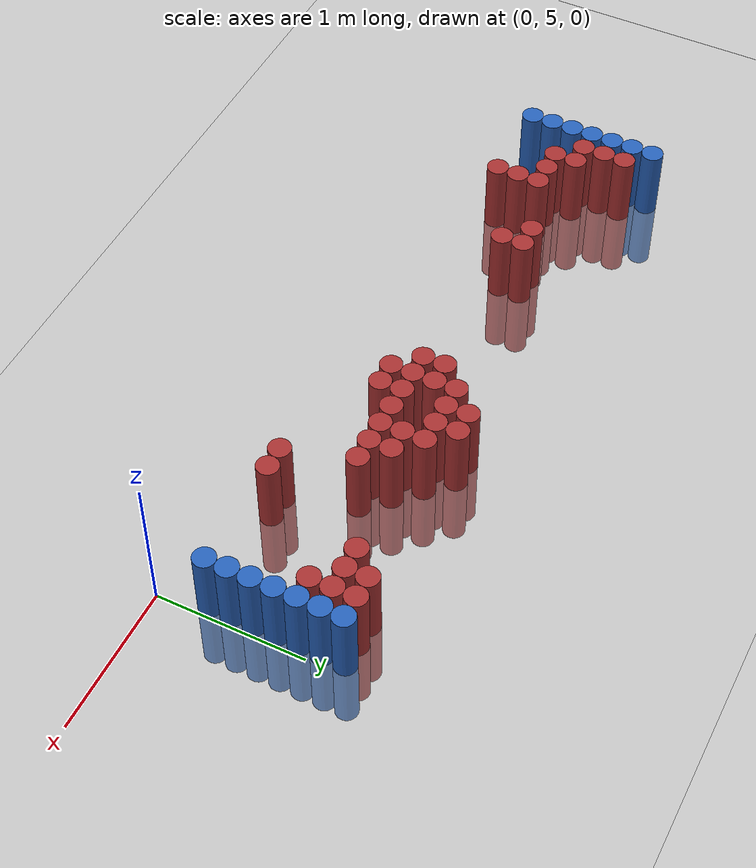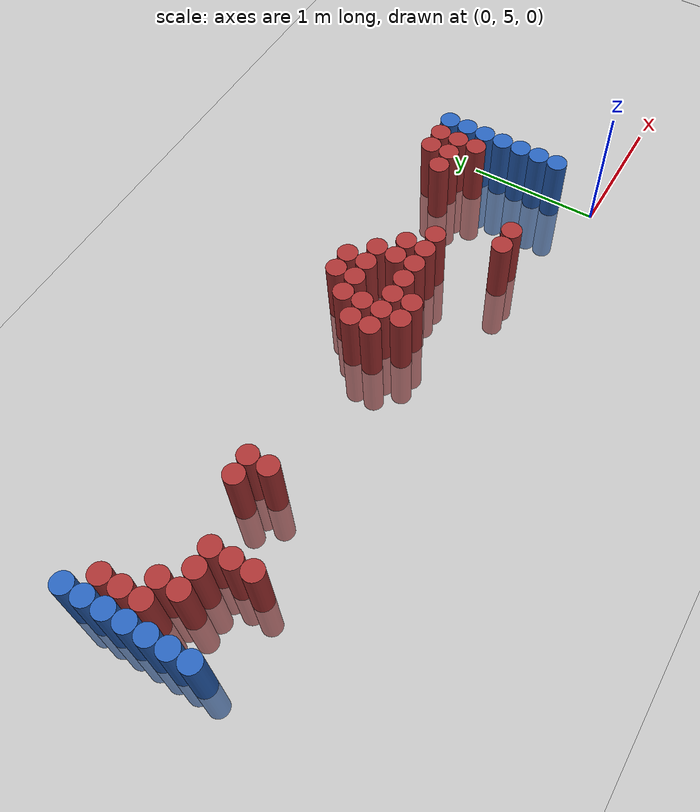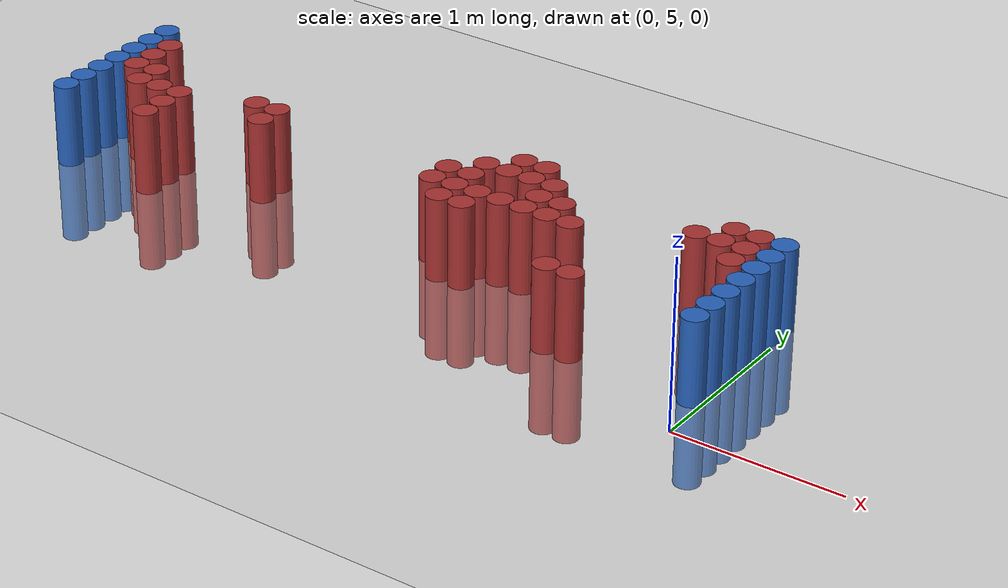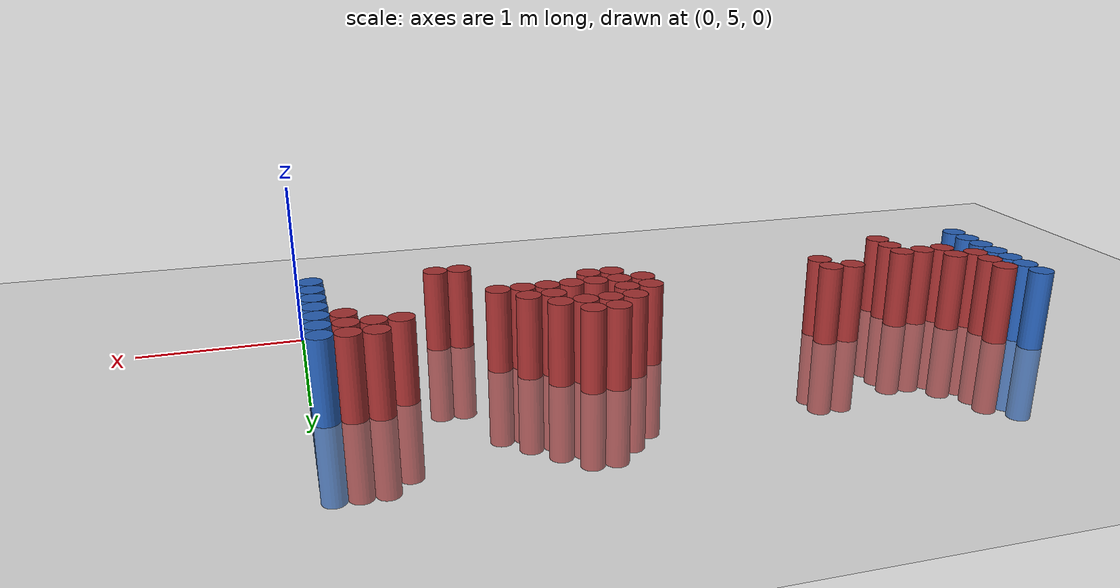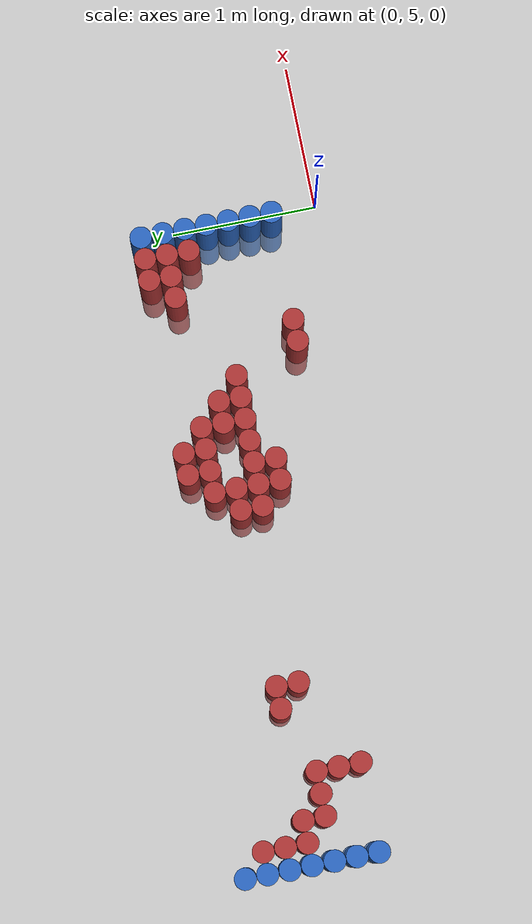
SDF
<sdf version="1.6">
 <world name="default">
  <model name="ground_plane">
   <static>1</static>
   <link name="link">
    <collision name="collision">
     <geometry><plane><normal>0 0 1</normal><size>100 100</size></plane></geometry>
     <surface><friction><ode><mu>100</mu><mu2>50</mu2></ode></friction></surface>
    </collision>
    <visual name="visual">
     <cast_shadows>0</cast_shadows>
     <geometry><plane><normal>0 0 1</normal><size>100 100</size></plane></geometry>
     <material>
      <script><uri>file://media/materials/scripts/gazebo.material</uri><name>Gazebo/Grey</name></script>
     </material>
    </visual>
   </link>
  </model>
  <model name="unit_cylinder_98">
   <static>1</static>
   <pose>-4.425000 5.475000 0.000000 0.000000 0.000000 0.000000</pose>
   <link name="link">
    <inertial>
     <mass>1</mass>
     <inertia><ixx>0.145833</ixx><ixy>0</ixy><ixz>0</ixz><iyy>0.145833</iyy><iyz>0</iyz><izz>0.125</izz></inertia>
    </inertial>
    <collision name="collision">
     <geometry><cylinder><radius>0.075000</radius><length>1</length></cylinder></geometry>
    </collision>
    <visual name="visual">
     <geometry><cylinder><radius>0.075000</radius><length>1</length></cylinder></geometry>
     <material>
      <ambient>0.152000 0.379000 0.720000 1</ambient>
      <diffuse>0.152000 0.379000 0.720000 1</diffuse>
     </material>
     <material>
      <script><name>Gazebo/Grey</name><uri>file://media/materials/scripts/gazebo.material</uri></script>
     </material>
    </visual>
   </link>
  </model>
  <model name="unit_cylinder_99">
   <static>1</static>
   <pose>-4.425000 5.625000 0.000000 0.000000 0.000000 0.000000</pose>
   <link name="link">
    <inertial>
     <mass>1</mass>
     <inertia><ixx>0.145833</ixx><ixy>0</ixy><ixz>0</ixz><iyy>0.145833</iyy><iyz>0</iyz><izz>0.125</izz></inertia>
    </inertial>
    <collision name="collision">
     <geometry><cylinder><radius>0.075000</radius><length>1</length></cylinder></geometry>
    </collision>
    <visual name="visual">
     <geometry><cylinder><radius>0.075000</radius><length>1</length></cylinder></geometry>
     <material>
      <ambient>0.152000 0.379000 0.720000 1</ambient>
      <diffuse>0.152000 0.379000 0.720000 1</diffuse>
     </material>
     <material>
      <script><name>Gazebo/Grey</name><uri>file://media/materials/scripts/gazebo.material</uri></script>
     </material>
    </visual>
   </link>
  </model>
  <model name="unit_cylinder_100">
   <static>1</static>
   <pose>-4.425000 5.775000 0.000000 0.000000 0.000000 0.000000</pose>
   <link name="link">
    <inertial>
     <mass>1</mass>
     <inertia><ixx>0.145833</ixx><ixy>0</ixy><ixz>0</ixz><iyy>0.145833</iyy><iyz>0</iyz><izz>0.125</izz></inertia>
    </inertial>
    <collision name="collision">
     <geometry><cylinder><radius>0.075000</radius><length>1</length></cylinder></geometry>
    </collision>
    <visual name="visual">
     <geometry><cylinder><radius>0.075000</radius><length>1</length></cylinder></geometry>
     <material>
      <ambient>0.152000 0.379000 0.720000 1</ambient>
      <diffuse>0.152000 0.379000 0.720000 1</diffuse>
     </material>
     <material>
      <script><name>Gazebo/Grey</name><uri>file://media/materials/scripts/gazebo.material</uri></script>
     </material>
    </visual>
   </link>
  </model>
  <model name="unit_cylinder_101">
   <static>1</static>
   <pose>-4.425000 5.925000 0.000000 0.000000 0.000000 0.000000</pose>
   <link name="link">
    <inertial>
     <mass>1</mass>
     <inertia><ixx>0.145833</ixx><ixy>0</ixy><ixz>0</ixz><iyy>0.145833</iyy><iyz>0</iyz><izz>0.125</izz></inertia>
    </inertial>
    <collision name="collision">
     <geometry><cylinder><radius>0.075000</radius><length>1</length></cylinder></geometry>
    </collision>
    <visual name="visual">
     <geometry><cylinder><radius>0.075000</radius><length>1</length></cylinder></geometry>
     <material>
      <ambient>0.152000 0.379000 0.720000 1</ambient>
      <diffuse>0.152000 0.379000 0.720000 1</diffuse>
     </material>
     <material>
      <script><name>Gazebo/Grey</name><uri>file://media/materials/scripts/gazebo.material</uri></script>
     </material>
    </visual>
   </link>
  </model>
  <model name="unit_cylinder_102">
   <static>1</static>
   <pose>-4.425000 6.075000 0.000000 0.000000 0.000000 0.000000</pose>
   <link name="link">
    <inertial>
     <mass>1</mass>
     <inertia><ixx>0.145833</ixx><ixy>0</ixy><ixz>0</ixz><iyy>0.145833</iyy><iyz>0</iyz><izz>0.125</izz></inertia>
    </inertial>
    <collision name="collision">
     <geometry><cylinder><radius>0.075000</radius><length>1</length></cylinder></geometry>
    </collision>
    <visual name="visual">
     <geometry><cylinder><radius>0.075000</radius><length>1</length></cylinder></geometry>
     <material>
      <ambient>0.152000 0.379000 0.720000 1</ambient>
      <diffuse>0.152000 0.379000 0.720000 1</diffuse>
     </material>
     <material>
      <script><name>Gazebo/Grey</name><uri>file://media/materials/scripts/gazebo.material</uri></script>
     </material>
    </visual>
   </link>
  </model>
  <model name="unit_cylinder_103">
   <static>1</static>
   <pose>-4.425000 6.225000 0.000000 0.000000 0.000000 0.000000</pose>
   <link name="link">
    <inertial>
     <mass>1</mass>
     <inertia><ixx>0.145833</ixx><ixy>0</ixy><ixz>0</ixz><iyy>0.145833</iyy><iyz>0</iyz><izz>0.125</izz></inertia>
    </inertial>
    <collision name="collision">
     <geometry><cylinder><radius>0.075000</radius><length>1</length></cylinder></geometry>
    </collision>
    <visual name="visual">
     <geometry><cylinder><radius>0.075000</radius><length>1</length></cylinder></geometry>
     <material>
      <ambient>0.152000 0.379000 0.720000 1</ambient>
      <diffuse>0.152000 0.379000 0.720000 1</diffuse>
     </material>
     <material>
      <script><name>Gazebo/Grey</name><uri>file://media/materials/scripts/gazebo.material</uri></script>
     </material>
    </visual>
   </link>
  </model>
  <model name="unit_cylinder_104">
   <static>1</static>
   <pose>-4.425000 6.375000 0.000000 0.000000 0.000000 0.000000</pose>
   <link name="link">
    <inertial>
     <mass>1</mass>
     <inertia><ixx>0.145833</ixx><ixy>0</ixy><ixz>0</ixz><iyy>0.145833</iyy><iyz>0</iyz><izz>0.125</izz></inertia>
    </inertial>
    <collision name="collision">
     <geometry><cylinder><radius>0.075000</radius><length>1</length></cylinder></geometry>
    </collision>
    <visual name="visual">
     <geometry><cylinder><radius>0.075000</radius><length>1</length></cylinder></geometry>
     <material>
      <ambient>0.152000 0.379000 0.720000 1</ambient>
      <diffuse>0.152000 0.379000 0.720000 1</diffuse>
     </material>
     <material>
      <script><name>Gazebo/Grey</name><uri>file://media/materials/scripts/gazebo.material</uri></script>
     </material>
    </visual>
   </link>
  </model>
  <model name="unit_cylinder_128">
   <static>1</static>
   <pose>-4.275000 5.925000 0.000000 0.000000 0.000000 0.000000</pose>
   <link name="link">
    <inertial>
     <mass>1</mass>
     <inertia><ixx>0.145833</ixx><ixy>0</ixy><ixz>0</ixz><iyy>0.145833</iyy><iyz>0</iyz><izz>0.125</izz></inertia>
    </inertial>
    <collision name="collision">
     <geometry><cylinder><radius>0.075000</radius><length>1</length></cylinder></geometry>
    </collision>
    <visual name="visual">
     <geometry><cylinder><radius>0.075000</radius><length>1</length></cylinder></geometry>
     <material>
      <ambient>0.648000 0.192000 0.192000 1</ambient>
      <diffuse>0.648000 0.192000 0.192000 1</diffuse>
     </material>
     <material>
      <script><name>Gazebo/Grey</name><uri>file://media/materials/scripts/gazebo.material</uri></script>
     </material>
    </visual>
   </link>
  </model>
  <model name="unit_cylinder_129">
   <static>1</static>
   <pose>-4.275000 6.075000 0.000000 0.000000 0.000000 0.000000</pose>
   <link name="link">
    <inertial>
     <mass>1</mass>
     <inertia><ixx>0.145833</ixx><ixy>0</ixy><ixz>0</ixz><iyy>0.145833</iyy><iyz>0</iyz><izz>0.125</izz></inertia>
    </inertial>
    <collision name="collision">
     <geometry><cylinder><radius>0.075000</radius><length>1</length></cylinder></geometry>
    </collision>
    <visual name="visual">
     <geometry><cylinder><radius>0.075000</radius><length>1</length></cylinder></geometry>
     <material>
      <ambient>0.648000 0.192000 0.192000 1</ambient>
      <diffuse>0.648000 0.192000 0.192000 1</diffuse>
     </material>
     <material>
      <script><name>Gazebo/Grey</name><uri>file://media/materials/scripts/gazebo.material</uri></script>
     </material>
    </visual>
   </link>
  </model>
  <model name="unit_cylinder_130">
   <static>1</static>
   <pose>-4.275000 6.225000 0.000000 0.000000 0.000000 0.000000</pose>
   <link name="link">
    <inertial>
     <mass>1</mass>
     <inertia><ixx>0.145833</ixx><ixy>0</ixy><ixz>0</ixz><iyy>0.145833</iyy><iyz>0</iyz><izz>0.125</izz></inertia>
    </inertial>
    <collision name="collision">
     <geometry><cylinder><radius>0.075000</radius><length>1</length></cylinder></geometry>
    </collision>
    <visual name="visual">
     <geometry><cylinder><radius>0.075000</radius><length>1</length></cylinder></geometry>
     <material>
      <ambient>0.648000 0.192000 0.192000 1</ambient>
      <diffuse>0.648000 0.192000 0.192000 1</diffuse>
     </material>
     <material>
      <script><name>Gazebo/Grey</name><uri>file://media/materials/scripts/gazebo.material</uri></script>
     </material>
    </visual>
   </link>
  </model>
  <model name="unit_cylinder_144">
   <static>1</static>
   <pose>-4.125000 5.775000 0.000000 0.000000 0.000000 0.000000</pose>
   <link name="link">
    <inertial>
     <mass>1</mass>
     <inertia><ixx>0.145833</ixx><ixy>0</ixy><ixz>0</ixz><iyy>0.145833</iyy><iyz>0</iyz><izz>0.125</izz></inertia>
    </inertial>
    <collision name="collision">
     <geometry><cylinder><radius>0.075000</radius><length>1</length></cylinder></geometry>
    </collision>
    <visual name="visual">
     <geometry><cylinder><radius>0.075000</radius><length>1</length></cylinder></geometry>
     <material>
      <ambient>0.648000 0.192000 0.192000 1</ambient>
      <diffuse>0.648000 0.192000 0.192000 1</diffuse>
     </material>
     <material>
      <script><name>Gazebo/Grey</name><uri>file://media/materials/scripts/gazebo.material</uri></script>
     </material>
    </visual>
   </link>
  </model>
  <model name="unit_cylinder_145">
   <static>1</static>
   <pose>-4.125000 5.925000 0.000000 0.000000 0.000000 0.000000</pose>
   <link name="link">
    <inertial>
     <mass>1</mass>
     <inertia><ixx>0.145833</ixx><ixy>0</ixy><ixz>0</ixz><iyy>0.145833</iyy><iyz>0</iyz><izz>0.125</izz></inertia>
    </inertial>
    <collision name="collision">
     <geometry><cylinder><radius>0.075000</radius><length>1</length></cylinder></geometry>
    </collision>
    <visual name="visual">
     <geometry><cylinder><radius>0.075000</radius><length>1</length></cylinder></geometry>
     <material>
      <ambient>0.648000 0.192000 0.192000 1</ambient>
      <diffuse>0.648000 0.192000 0.192000 1</diffuse>
     </material>
     <material>
      <script><name>Gazebo/Grey</name><uri>file://media/materials/scripts/gazebo.material</uri></script>
     </material>
    </visual>
   </link>
  </model>
  <model name="unit_cylinder_156">
   <static>1</static>
   <pose>-3.975000 5.775000 0.000000 0.000000 0.000000 0.000000</pose>
   <link name="link">
    <inertial>
     <mass>1</mass>
     <inertia><ixx>0.145833</ixx><ixy>0</ixy><ixz>0</ixz><iyy>0.145833</iyy><iyz>0</iyz><izz>0.125</izz></inertia>
    </inertial>
    <collision name="collision">
     <geometry><cylinder><radius>0.075000</radius><length>1</length></cylinder></geometry>
    </collision>
    <visual name="visual">
     <geometry><cylinder><radius>0.075000</radius><length>1</length></cylinder></geometry>
     <material>
      <ambient>0.648000 0.192000 0.192000 1</ambient>
      <diffuse>0.648000 0.192000 0.192000 1</diffuse>
     </material>
     <material>
      <script><name>Gazebo/Grey</name><uri>file://media/materials/scripts/gazebo.material</uri></script>
     </material>
    </visual>
   </link>
  </model>
  <model name="unit_cylinder_159">
   <static>1</static>
   <pose>-3.825000 5.475000 0.000000 0.000000 0.000000 0.000000</pose>
   <link name="link">
    <inertial>
     <mass>1</mass>
     <inertia><ixx>0.145833</ixx><ixy>0</ixy><ixz>0</ixz><iyy>0.145833</iyy><iyz>0</iyz><izz>0.125</izz></inertia>
    </inertial>
    <collision name="collision">
     <geometry><cylinder><radius>0.075000</radius><length>1</length></cylinder></geometry>
    </collision>
    <visual name="visual">
     <geometry><cylinder><radius>0.075000</radius><length>1</length></cylinder></geometry>
     <material>
      <ambient>0.648000 0.192000 0.192000 1</ambient>
      <diffuse>0.648000 0.192000 0.192000 1</diffuse>
     </material>
     <material>
      <script><name>Gazebo/Grey</name><uri>file://media/materials/scripts/gazebo.material</uri></script>
     </material>
    </visual>
   </link>
  </model>
  <model name="unit_cylinder_160">
   <static>1</static>
   <pose>-3.825000 5.625000 0.000000 0.000000 0.000000 0.000000</pose>
   <link name="link">
    <inertial>
     <mass>1</mass>
     <inertia><ixx>0.145833</ixx><ixy>0</ixy><ixz>0</ixz><iyy>0.145833</iyy><iyz>0</iyz><izz>0.125</izz></inertia>
    </inertial>
    <collision name="collision">
     <geometry><cylinder><radius>0.075000</radius><length>1</length></cylinder></geometry>
    </collision>
    <visual name="visual">
     <geometry><cylinder><radius>0.075000</radius><length>1</length></cylinder></geometry>
     <material>
      <ambient>0.648000 0.192000 0.192000 1</ambient>
      <diffuse>0.648000 0.192000 0.192000 1</diffuse>
     </material>
     <material>
      <script><name>Gazebo/Grey</name><uri>file://media/materials/scripts/gazebo.material</uri></script>
     </material>
    </visual>
   </link>
  </model>
  <model name="unit_cylinder_161">
   <static>1</static>
   <pose>-3.825000 5.775000 0.000000 0.000000 0.000000 0.000000</pose>
   <link name="link">
    <inertial>
     <mass>1</mass>
     <inertia><ixx>0.145833</ixx><ixy>0</ixy><ixz>0</ixz><iyy>0.145833</iyy><iyz>0</iyz><izz>0.125</izz></inertia>
    </inertial>
    <collision name="collision">
     <geometry><cylinder><radius>0.075000</radius><length>1</length></cylinder></geometry>
    </collision>
    <visual name="visual">
     <geometry><cylinder><radius>0.075000</radius><length>1</length></cylinder></geometry>
     <material>
      <ambient>0.648000 0.192000 0.192000 1</ambient>
      <diffuse>0.648000 0.192000 0.192000 1</diffuse>
     </material>
     <material>
      <script><name>Gazebo/Grey</name><uri>file://media/materials/scripts/gazebo.material</uri></script>
     </material>
    </visual>
   </link>
  </model>
  <model name="unit_cylinder_166">
   <static>1</static>
   <pose>-3.375000 5.925000 0.000000 0.000000 0.000000 0.000000</pose>
   <link name="link">
    <inertial>
     <mass>1</mass>
     <inertia><ixx>0.145833</ixx><ixy>0</ixy><ixz>0</ixz><iyy>0.145833</iyy><iyz>0</iyz><izz>0.125</izz></inertia>
    </inertial>
    <collision name="collision">
     <geometry><cylinder><radius>0.075000</radius><length>1</length></cylinder></geometry>
    </collision>
    <visual name="visual">
     <geometry><cylinder><radius>0.075000</radius><length>1</length></cylinder></geometry>
     <material>
      <ambient>0.648000 0.192000 0.192000 1</ambient>
      <diffuse>0.648000 0.192000 0.192000 1</diffuse>
     </material>
     <material>
      <script><name>Gazebo/Grey</name><uri>file://media/materials/scripts/gazebo.material</uri></script>
     </material>
    </visual>
   </link>
  </model>
  <model name="unit_cylinder_167">
   <static>1</static>
   <pose>-3.225000 5.775000 0.000000 0.000000 0.000000 0.000000</pose>
   <link name="link">
    <inertial>
     <mass>1</mass>
     <inertia><ixx>0.145833</ixx><ixy>0</ixy><ixz>0</ixz><iyy>0.145833</iyy><iyz>0</iyz><izz>0.125</izz></inertia>
    </inertial>
    <collision name="collision">
     <geometry><cylinder><radius>0.075000</radius><length>1</length></cylinder></geometry>
    </collision>
    <visual name="visual">
     <geometry><cylinder><radius>0.075000</radius><length>1</length></cylinder></geometry>
     <material>
      <ambient>0.648000 0.192000 0.192000 1</ambient>
      <diffuse>0.648000 0.192000 0.192000 1</diffuse>
     </material>
     <material>
      <script><name>Gazebo/Grey</name><uri>file://media/materials/scripts/gazebo.material</uri></script>
     </material>
    </visual>
   </link>
  </model>
  <model name="unit_cylinder_168">
   <static>1</static>
   <pose>-3.225000 5.925000 0.000000 0.000000 0.000000 0.000000</pose>
   <link name="link">
    <inertial>
     <mass>1</mass>
     <inertia><ixx>0.145833</ixx><ixy>0</ixy><ixz>0</ixz><iyy>0.145833</iyy><iyz>0</iyz><izz>0.125</izz></inertia>
    </inertial>
    <collision name="collision">
     <geometry><cylinder><radius>0.075000</radius><length>1</length></cylinder></geometry>
    </collision>
    <visual name="visual">
     <geometry><cylinder><radius>0.075000</radius><length>1</length></cylinder></geometry>
     <material>
      <ambient>0.648000 0.192000 0.192000 1</ambient>
      <diffuse>0.648000 0.192000 0.192000 1</diffuse>
     </material>
     <material>
      <script><name>Gazebo/Grey</name><uri>file://media/materials/scripts/gazebo.material</uri></script>
     </material>
    </visual>
   </link>
  </model>
  <model name="unit_cylinder_170">
   <static>1</static>
   <pose>-2.025000 5.775000 0.000000 0.000000 0.000000 0.000000</pose>
   <link name="link">
    <inertial>
     <mass>1</mass>
     <inertia><ixx>0.145833</ixx><ixy>0</ixy><ixz>0</ixz><iyy>0.145833</iyy><iyz>0</iyz><izz>0.125</izz></inertia>
    </inertial>
    <collision name="collision">
     <geometry><cylinder><radius>0.075000</radius><length>1</length></cylinder></geometry>
    </collision>
    <visual name="visual">
     <geometry><cylinder><radius>0.075000</radius><length>1</length></cylinder></geometry>
     <material>
      <ambient>0.648000 0.192000 0.192000 1</ambient>
      <diffuse>0.648000 0.192000 0.192000 1</diffuse>
     </material>
     <material>
      <script><name>Gazebo/Grey</name><uri>file://media/materials/scripts/gazebo.material</uri></script>
     </material>
    </visual>
   </link>
  </model>
  <model name="unit_cylinder_171">
   <static>1</static>
   <pose>-2.025000 5.925000 0.000000 0.000000 0.000000 0.000000</pose>
   <link name="link">
    <inertial>
     <mass>1</mass>
     <inertia><ixx>0.145833</ixx><ixy>0</ixy><ixz>0</ixz><iyy>0.145833</iyy><iyz>0</iyz><izz>0.125</izz></inertia>
    </inertial>
    <collision name="collision">
     <geometry><cylinder><radius>0.075000</radius><length>1</length></cylinder></geometry>
    </collision>
    <visual name="visual">
     <geometry><cylinder><radius>0.075000</radius><length>1</length></cylinder></geometry>
     <material>
      <ambient>0.648000 0.192000 0.192000 1</ambient>
      <diffuse>0.648000 0.192000 0.192000 1</diffuse>
     </material>
     <material>
      <script><name>Gazebo/Grey</name><uri>file://media/materials/scripts/gazebo.material</uri></script>
     </material>
    </visual>
   </link>
  </model>
  <model name="unit_cylinder_179">
   <static>1</static>
   <pose>-1.875000 5.625000 0.000000 0.000000 0.000000 0.000000</pose>
   <link name="link">
    <inertial>
     <mass>1</mass>
     <inertia><ixx>0.145833</ixx><ixy>0</ixy><ixz>0</ixz><iyy>0.145833</iyy><iyz>0</iyz><izz>0.125</izz></inertia>
    </inertial>
    <collision name="collision">
     <geometry><cylinder><radius>0.075000</radius><length>1</length></cylinder></geometry>
    </collision>
    <visual name="visual">
     <geometry><cylinder><radius>0.075000</radius><length>1</length></cylinder></geometry>
     <material>
      <ambient>0.648000 0.192000 0.192000 1</ambient>
      <diffuse>0.648000 0.192000 0.192000 1</diffuse>
     </material>
     <material>
      <script><name>Gazebo/Grey</name><uri>file://media/materials/scripts/gazebo.material</uri></script>
     </material>
    </visual>
   </link>
  </model>
  <model name="unit_cylinder_180">
   <static>1</static>
   <pose>-1.875000 5.775000 0.000000 0.000000 0.000000 0.000000</pose>
   <link name="link">
    <inertial>
     <mass>1</mass>
     <inertia><ixx>0.145833</ixx><ixy>0</ixy><ixz>0</ixz><iyy>0.145833</iyy><iyz>0</iyz><izz>0.125</izz></inertia>
    </inertial>
    <collision name="collision">
     <geometry><cylinder><radius>0.075000</radius><length>1</length></cylinder></geometry>
    </collision>
    <visual name="visual">
     <geometry><cylinder><radius>0.075000</radius><length>1</length></cylinder></geometry>
     <material>
      <ambient>0.648000 0.192000 0.192000 1</ambient>
      <diffuse>0.648000 0.192000 0.192000 1</diffuse>
     </material>
     <material>
      <script><name>Gazebo/Grey</name><uri>file://media/materials/scripts/gazebo.material</uri></script>
     </material>
    </visual>
   </link>
  </model>
  <model name="unit_cylinder_181">
   <static>1</static>
   <pose>-1.875000 5.925000 0.000000 0.000000 0.000000 0.000000</pose>
   <link name="link">
    <inertial>
     <mass>1</mass>
     <inertia><ixx>0.145833</ixx><ixy>0</ixy><ixz>0</ixz><iyy>0.145833</iyy><iyz>0</iyz><izz>0.125</izz></inertia>
    </inertial>
    <collision name="collision">
     <geometry><cylinder><radius>0.075000</radius><length>1</length></cylinder></geometry>
    </collision>
    <visual name="visual">
     <geometry><cylinder><radius>0.075000</radius><length>1</length></cylinder></geometry>
     <material>
      <ambient>0.648000 0.192000 0.192000 1</ambient>
      <diffuse>0.648000 0.192000 0.192000 1</diffuse>
     </material>
     <material>
      <script><name>Gazebo/Grey</name><uri>file://media/materials/scripts/gazebo.material</uri></script>
     </material>
    </visual>
   </link>
  </model>
  <model name="unit_cylinder_182">
   <static>1</static>
   <pose>-1.875000 6.075000 0.000000 0.000000 0.000000 0.000000</pose>
   <link name="link">
    <inertial>
     <mass>1</mass>
     <inertia><ixx>0.145833</ixx><ixy>0</ixy><ixz>0</ixz><iyy>0.145833</iyy><iyz>0</iyz><izz>0.125</izz></inertia>
    </inertial>
    <collision name="collision">
     <geometry><cylinder><radius>0.075000</radius><length>1</length></cylinder></geometry>
    </collision>
    <visual name="visual">
     <geometry><cylinder><radius>0.075000</radius><length>1</length></cylinder></geometry>
     <material>
      <ambient>0.648000 0.192000 0.192000 1</ambient>
      <diffuse>0.648000 0.192000 0.192000 1</diffuse>
     </material>
     <material>
      <script><name>Gazebo/Grey</name><uri>file://media/materials/scripts/gazebo.material</uri></script>
     </material>
    </visual>
   </link>
  </model>
  <model name="unit_cylinder_193">
   <static>1</static>
   <pose>-1.725000 5.625000 0.000000 0.000000 0.000000 0.000000</pose>
   <link name="link">
    <inertial>
     <mass>1</mass>
     <inertia><ixx>0.145833</ixx><ixy>0</ixy><ixz>0</ixz><iyy>0.145833</iyy><iyz>0</iyz><izz>0.125</izz></inertia>
    </inertial>
    <collision name="collision">
     <geometry><cylinder><radius>0.075000</radius><length>1</length></cylinder></geometry>
    </collision>
    <visual name="visual">
     <geometry><cylinder><radius>0.075000</radius><length>1</length></cylinder></geometry>
     <material>
      <ambient>0.648000 0.192000 0.192000 1</ambient>
      <diffuse>0.648000 0.192000 0.192000 1</diffuse>
     </material>
     <material>
      <script><name>Gazebo/Grey</name><uri>file://media/materials/scripts/gazebo.material</uri></script>
     </material>
    </visual>
   </link>
  </model>
  <model name="unit_cylinder_194">
   <static>1</static>
   <pose>-1.725000 5.775000 0.000000 0.000000 0.000000 0.000000</pose>
   <link name="link">
    <inertial>
     <mass>1</mass>
     <inertia><ixx>0.145833</ixx><ixy>0</ixy><ixz>0</ixz><iyy>0.145833</iyy><iyz>0</iyz><izz>0.125</izz></inertia>
    </inertial>
    <collision name="collision">
     <geometry><cylinder><radius>0.075000</radius><length>1</length></cylinder></geometry>
    </collision>
    <visual name="visual">
     <geometry><cylinder><radius>0.075000</radius><length>1</length></cylinder></geometry>
     <material>
      <ambient>0.648000 0.192000 0.192000 1</ambient>
      <diffuse>0.648000 0.192000 0.192000 1</diffuse>
     </material>
     <material>
      <script><name>Gazebo/Grey</name><uri>file://media/materials/scripts/gazebo.material</uri></script>
     </material>
    </visual>
   </link>
  </model>
  <model name="unit_cylinder_195">
   <static>1</static>
   <pose>-1.725000 6.075000 0.000000 0.000000 0.000000 0.000000</pose>
   <link name="link">
    <inertial>
     <mass>1</mass>
     <inertia><ixx>0.145833</ixx><ixy>0</ixy><ixz>0</ixz><iyy>0.145833</iyy><iyz>0</iyz><izz>0.125</izz></inertia>
    </inertial>
    <collision name="collision">
     <geometry><cylinder><radius>0.075000</radius><length>1</length></cylinder></geometry>
    </collision>
    <visual name="visual">
     <geometry><cylinder><radius>0.075000</radius><length>1</length></cylinder></geometry>
     <material>
      <ambient>0.648000 0.192000 0.192000 1</ambient>
      <diffuse>0.648000 0.192000 0.192000 1</diffuse>
     </material>
     <material>
      <script><name>Gazebo/Grey</name><uri>file://media/materials/scripts/gazebo.material</uri></script>
     </material>
    </visual>
   </link>
  </model>
  <model name="unit_cylinder_196">
   <static>1</static>
   <pose>-1.725000 6.225000 0.000000 0.000000 0.000000 0.000000</pose>
   <link name="link">
    <inertial>
     <mass>1</mass>
     <inertia><ixx>0.145833</ixx><ixy>0</ixy><ixz>0</ixz><iyy>0.145833</iyy><iyz>0</iyz><izz>0.125</izz></inertia>
    </inertial>
    <collision name="collision">
     <geometry><cylinder><radius>0.075000</radius><length>1</length></cylinder></geometry>
    </collision>
    <visual name="visual">
     <geometry><cylinder><radius>0.075000</radius><length>1</length></cylinder></geometry>
     <material>
      <ambient>0.648000 0.192000 0.192000 1</ambient>
      <diffuse>0.648000 0.192000 0.192000 1</diffuse>
     </material>
     <material>
      <script><name>Gazebo/Grey</name><uri>file://media/materials/scripts/gazebo.material</uri></script>
     </material>
    </visual>
   </link>
  </model>
  <model name="unit_cylinder_204">
   <static>1</static>
   <pose>-1.575000 5.775000 0.000000 0.000000 0.000000 0.000000</pose>
   <link name="link">
    <inertial>
     <mass>1</mass>
     <inertia><ixx>0.145833</ixx><ixy>0</ixy><ixz>0</ixz><iyy>0.145833</iyy><iyz>0</iyz><izz>0.125</izz></inertia>
    </inertial>
    <collision name="collision">
     <geometry><cylinder><radius>0.075000</radius><length>1</length></cylinder></geometry>
    </collision>
    <visual name="visual">
     <geometry><cylinder><radius>0.075000</radius><length>1</length></cylinder></geometry>
     <material>
      <ambient>0.648000 0.192000 0.192000 1</ambient>
      <diffuse>0.648000 0.192000 0.192000 1</diffuse>
     </material>
     <material>
      <script><name>Gazebo/Grey</name><uri>file://media/materials/scripts/gazebo.material</uri></script>
     </material>
    </visual>
   </link>
  </model>
  <model name="unit_cylinder_205">
   <static>1</static>
   <pose>-1.575000 6.075000 0.000000 0.000000 0.000000 0.000000</pose>
   <link name="link">
    <inertial>
     <mass>1</mass>
     <inertia><ixx>0.145833</ixx><ixy>0</ixy><ixz>0</ixz><iyy>0.145833</iyy><iyz>0</iyz><izz>0.125</izz></inertia>
    </inertial>
    <collision name="collision">
     <geometry><cylinder><radius>0.075000</radius><length>1</length></cylinder></geometry>
    </collision>
    <visual name="visual">
     <geometry><cylinder><radius>0.075000</radius><length>1</length></cylinder></geometry>
     <material>
      <ambient>0.648000 0.192000 0.192000 1</ambient>
      <diffuse>0.648000 0.192000 0.192000 1</diffuse>
     </material>
     <material>
      <script><name>Gazebo/Grey</name><uri>file://media/materials/scripts/gazebo.material</uri></script>
     </material>
    </visual>
   </link>
  </model>
  <model name="unit_cylinder_206">
   <static>1</static>
   <pose>-1.575000 6.225000 0.000000 0.000000 0.000000 0.000000</pose>
   <link name="link">
    <inertial>
     <mass>1</mass>
     <inertia><ixx>0.145833</ixx><ixy>0</ixy><ixz>0</ixz><iyy>0.145833</iyy><iyz>0</iyz><izz>0.125</izz></inertia>
    </inertial>
    <collision name="collision">
     <geometry><cylinder><radius>0.075000</radius><length>1</length></cylinder></geometry>
    </collision>
    <visual name="visual">
     <geometry><cylinder><radius>0.075000</radius><length>1</length></cylinder></geometry>
     <material>
      <ambient>0.648000 0.192000 0.192000 1</ambient>
      <diffuse>0.648000 0.192000 0.192000 1</diffuse>
     </material>
     <material>
      <script><name>Gazebo/Grey</name><uri>file://media/materials/scripts/gazebo.material</uri></script>
     </material>
    </visual>
   </link>
  </model>
  <model name="unit_cylinder_212">
   <static>1</static>
   <pose>-1.425000 5.775000 0.000000 0.000000 0.000000 0.000000</pose>
   <link name="link">
    <inertial>
     <mass>1</mass>
     <inertia><ixx>0.145833</ixx><ixy>0</ixy><ixz>0</ixz><iyy>0.145833</iyy><iyz>0</iyz><izz>0.125</izz></inertia>
    </inertial>
    <collision name="collision">
     <geometry><cylinder><radius>0.075000</radius><length>1</length></cylinder></geometry>
    </collision>
    <visual name="visual">
     <geometry><cylinder><radius>0.075000</radius><length>1</length></cylinder></geometry>
     <material>
      <ambient>0.648000 0.192000 0.192000 1</ambient>
      <diffuse>0.648000 0.192000 0.192000 1</diffuse>
     </material>
     <material>
      <script><name>Gazebo/Grey</name><uri>file://media/materials/scripts/gazebo.material</uri></script>
     </material>
    </visual>
   </link>
  </model>
  <model name="unit_cylinder_213">
   <static>1</static>
   <pose>-1.425000 5.925000 0.000000 0.000000 0.000000 0.000000</pose>
   <link name="link">
    <inertial>
     <mass>1</mass>
     <inertia><ixx>0.145833</ixx><ixy>0</ixy><ixz>0</ixz><iyy>0.145833</iyy><iyz>0</iyz><izz>0.125</izz></inertia>
    </inertial>
    <collision name="collision">
     <geometry><cylinder><radius>0.075000</radius><length>1</length></cylinder></geometry>
    </collision>
    <visual name="visual">
     <geometry><cylinder><radius>0.075000</radius><length>1</length></cylinder></geometry>
     <material>
      <ambient>0.648000 0.192000 0.192000 1</ambient>
      <diffuse>0.648000 0.192000 0.192000 1</diffuse>
     </material>
     <material>
      <script><name>Gazebo/Grey</name><uri>file://media/materials/scripts/gazebo.material</uri></script>
     </material>
    </visual>
   </link>
  </model>
  <model name="unit_cylinder_214">
   <static>1</static>
   <pose>-1.425000 6.075000 0.000000 0.000000 0.000000 0.000000</pose>
   <link name="link">
    <inertial>
     <mass>1</mass>
     <inertia><ixx>0.145833</ixx><ixy>0</ixy><ixz>0</ixz><iyy>0.145833</iyy><iyz>0</iyz><izz>0.125</izz></inertia>
    </inertial>
    <collision name="collision">
     <geometry><cylinder><radius>0.075000</radius><length>1</length></cylinder></geometry>
    </collision>
    <visual name="visual">
     <geometry><cylinder><radius>0.075000</radius><length>1</length></cylinder></geometry>
     <material>
      <ambient>0.648000 0.192000 0.192000 1</ambient>
      <diffuse>0.648000 0.192000 0.192000 1</diffuse>
     </material>
     <material>
      <script><name>Gazebo/Grey</name><uri>file://media/materials/scripts/gazebo.material</uri></script>
     </material>
    </visual>
   </link>
  </model>
  <model name="unit_cylinder_220">
   <static>1</static>
   <pose>-1.275000 5.775000 0.000000 0.000000 0.000000 0.000000</pose>
   <link name="link">
    <inertial>
     <mass>1</mass>
     <inertia><ixx>0.145833</ixx><ixy>0</ixy><ixz>0</ixz><iyy>0.145833</iyy><iyz>0</iyz><izz>0.125</izz></inertia>
    </inertial>
    <collision name="collision">
     <geometry><cylinder><radius>0.075000</radius><length>1</length></cylinder></geometry>
    </collision>
    <visual name="visual">
     <geometry><cylinder><radius>0.075000</radius><length>1</length></cylinder></geometry>
     <material>
      <ambient>0.648000 0.192000 0.192000 1</ambient>
      <diffuse>0.648000 0.192000 0.192000 1</diffuse>
     </material>
     <material>
      <script><name>Gazebo/Grey</name><uri>file://media/materials/scripts/gazebo.material</uri></script>
     </material>
    </visual>
   </link>
  </model>
  <model name="unit_cylinder_221">
   <static>1</static>
   <pose>-1.275000 5.925000 0.000000 0.000000 0.000000 0.000000</pose>
   <link name="link">
    <inertial>
     <mass>1</mass>
     <inertia><ixx>0.145833</ixx><ixy>0</ixy><ixz>0</ixz><iyy>0.145833</iyy><iyz>0</iyz><izz>0.125</izz></inertia>
    </inertial>
    <collision name="collision">
     <geometry><cylinder><radius>0.075000</radius><length>1</length></cylinder></geometry>
    </collision>
    <visual name="visual">
     <geometry><cylinder><radius>0.075000</radius><length>1</length></cylinder></geometry>
     <material>
      <ambient>0.648000 0.192000 0.192000 1</ambient>
      <diffuse>0.648000 0.192000 0.192000 1</diffuse>
     </material>
     <material>
      <script><name>Gazebo/Grey</name><uri>file://media/materials/scripts/gazebo.material</uri></script>
     </material>
    </visual>
   </link>
  </model>
  <model name="unit_cylinder_227">
   <static>1</static>
   <pose>-1.125000 5.775000 0.000000 0.000000 0.000000 0.000000</pose>
   <link name="link">
    <inertial>
     <mass>1</mass>
     <inertia><ixx>0.145833</ixx><ixy>0</ixy><ixz>0</ixz><iyy>0.145833</iyy><iyz>0</iyz><izz>0.125</izz></inertia>
    </inertial>
    <collision name="collision">
     <geometry><cylinder><radius>0.075000</radius><length>1</length></cylinder></geometry>
    </collision>
    <visual name="visual">
     <geometry><cylinder><radius>0.075000</radius><length>1</length></cylinder></geometry>
     <material>
      <ambient>0.648000 0.192000 0.192000 1</ambient>
      <diffuse>0.648000 0.192000 0.192000 1</diffuse>
     </material>
     <material>
      <script><name>Gazebo/Grey</name><uri>file://media/materials/scripts/gazebo.material</uri></script>
     </material>
    </visual>
   </link>
  </model>
  <model name="unit_cylinder_235">
   <static>1</static>
   <pose>-0.975000 5.325000 0.000000 0.000000 0.000000 0.000000</pose>
   <link name="link">
    <inertial>
     <mass>1</mass>
     <inertia><ixx>0.145833</ixx><ixy>0</ixy><ixz>0</ixz><iyy>0.145833</iyy><iyz>0</iyz><izz>0.125</izz></inertia>
    </inertial>
    <collision name="collision">
     <geometry><cylinder><radius>0.075000</radius><length>1</length></cylinder></geometry>
    </collision>
    <visual name="visual">
     <geometry><cylinder><radius>0.075000</radius><length>1</length></cylinder></geometry>
     <material>
      <ambient>0.648000 0.192000 0.192000 1</ambient>
      <diffuse>0.648000 0.192000 0.192000 1</diffuse>
     </material>
     <material>
      <script><name>Gazebo/Grey</name><uri>file://media/materials/scripts/gazebo.material</uri></script>
     </material>
    </visual>
   </link>
  </model>
  <model name="unit_cylinder_242">
   <static>1</static>
   <pose>-0.825000 5.325000 0.000000 0.000000 0.000000 0.000000</pose>
   <link name="link">
    <inertial>
     <mass>1</mass>
     <inertia><ixx>0.145833</ixx><ixy>0</ixy><ixz>0</ixz><iyy>0.145833</iyy><iyz>0</iyz><izz>0.125</izz></inertia>
    </inertial>
    <collision name="collision">
     <geometry><cylinder><radius>0.075000</radius><length>1</length></cylinder></geometry>
    </collision>
    <visual name="visual">
     <geometry><cylinder><radius>0.075000</radius><length>1</length></cylinder></geometry>
     <material>
      <ambient>0.648000 0.192000 0.192000 1</ambient>
      <diffuse>0.648000 0.192000 0.192000 1</diffuse>
     </material>
     <material>
      <script><name>Gazebo/Grey</name><uri>file://media/materials/scripts/gazebo.material</uri></script>
     </material>
    </visual>
   </link>
  </model>
  <model name="unit_cylinder_253">
   <static>1</static>
   <pose>-0.525000 6.075000 0.000000 0.000000 0.000000 0.000000</pose>
   <link name="link">
    <inertial>
     <mass>1</mass>
     <inertia><ixx>0.145833</ixx><ixy>0</ixy><ixz>0</ixz><iyy>0.145833</iyy><iyz>0</iyz><izz>0.125</izz></inertia>
    </inertial>
    <collision name="collision">
     <geometry><cylinder><radius>0.075000</radius><length>1</length></cylinder></geometry>
    </collision>
    <visual name="visual">
     <geometry><cylinder><radius>0.075000</radius><length>1</length></cylinder></geometry>
     <material>
      <ambient>0.648000 0.192000 0.192000 1</ambient>
      <diffuse>0.648000 0.192000 0.192000 1</diffuse>
     </material>
     <material>
      <script><name>Gazebo/Grey</name><uri>file://media/materials/scripts/gazebo.material</uri></script>
     </material>
    </visual>
   </link>
  </model>
  <model name="unit_cylinder_261">
   <static>1</static>
   <pose>-0.375000 6.075000 0.000000 0.000000 0.000000 0.000000</pose>
   <link name="link">
    <inertial>
     <mass>1</mass>
     <inertia><ixx>0.145833</ixx><ixy>0</ixy><ixz>0</ixz><iyy>0.145833</iyy><iyz>0</iyz><izz>0.125</izz></inertia>
    </inertial>
    <collision name="collision">
     <geometry><cylinder><radius>0.075000</radius><length>1</length></cylinder></geometry>
    </collision>
    <visual name="visual">
     <geometry><cylinder><radius>0.075000</radius><length>1</length></cylinder></geometry>
     <material>
      <ambient>0.648000 0.192000 0.192000 1</ambient>
      <diffuse>0.648000 0.192000 0.192000 1</diffuse>
     </material>
     <material>
      <script><name>Gazebo/Grey</name><uri>file://media/materials/scripts/gazebo.material</uri></script>
     </material>
    </visual>
   </link>
  </model>
  <model name="unit_cylinder_262">
   <static>1</static>
   <pose>-0.375000 6.225000 0.000000 0.000000 0.000000 0.000000</pose>
   <link name="link">
    <inertial>
     <mass>1</mass>
     <inertia><ixx>0.145833</ixx><ixy>0</ixy><ixz>0</ixz><iyy>0.145833</iyy><iyz>0</iyz><izz>0.125</izz></inertia>
    </inertial>
    <collision name="collision">
     <geometry><cylinder><radius>0.075000</radius><length>1</length></cylinder></geometry>
    </collision>
    <visual name="visual">
     <geometry><cylinder><radius>0.075000</radius><length>1</length></cylinder></geometry>
     <material>
      <ambient>0.648000 0.192000 0.192000 1</ambient>
      <diffuse>0.648000 0.192000 0.192000 1</diffuse>
     </material>
     <material>
      <script><name>Gazebo/Grey</name><uri>file://media/materials/scripts/gazebo.material</uri></script>
     </material>
    </visual>
   </link>
  </model>
  <model name="unit_cylinder_272">
   <static>1</static>
   <pose>-0.225000 5.925000 0.000000 0.000000 0.000000 0.000000</pose>
   <link name="link">
    <inertial>
     <mass>1</mass>
     <inertia><ixx>0.145833</ixx><ixy>0</ixy><ixz>0</ixz><iyy>0.145833</iyy><iyz>0</iyz><izz>0.125</izz></inertia>
    </inertial>
    <collision name="collision">
     <geometry><cylinder><radius>0.075000</radius><length>1</length></cylinder></geometry>
    </collision>
    <visual name="visual">
     <geometry><cylinder><radius>0.075000</radius><length>1</length></cylinder></geometry>
     <material>
      <ambient>0.648000 0.192000 0.192000 1</ambient>
      <diffuse>0.648000 0.192000 0.192000 1</diffuse>
     </material>
     <material>
      <script><name>Gazebo/Grey</name><uri>file://media/materials/scripts/gazebo.material</uri></script>
     </material>
    </visual>
   </link>
  </model>
  <model name="unit_cylinder_273">
   <static>1</static>
   <pose>-0.225000 6.075000 0.000000 0.000000 0.000000 0.000000</pose>
   <link name="link">
    <inertial>
     <mass>1</mass>
     <inertia><ixx>0.145833</ixx><ixy>0</ixy><ixz>0</ixz><iyy>0.145833</iyy><iyz>0</iyz><izz>0.125</izz></inertia>
    </inertial>
    <collision name="collision">
     <geometry><cylinder><radius>0.075000</radius><length>1</length></cylinder></geometry>
    </collision>
    <visual name="visual">
     <geometry><cylinder><radius>0.075000</radius><length>1</length></cylinder></geometry>
     <material>
      <ambient>0.648000 0.192000 0.192000 1</ambient>
      <diffuse>0.648000 0.192000 0.192000 1</diffuse>
     </material>
     <material>
      <script><name>Gazebo/Grey</name><uri>file://media/materials/scripts/gazebo.material</uri></script>
     </material>
    </visual>
   </link>
  </model>
  <model name="unit_cylinder_274">
   <static>1</static>
   <pose>-0.225000 6.225000 0.000000 0.000000 0.000000 0.000000</pose>
   <link name="link">
    <inertial>
     <mass>1</mass>
     <inertia><ixx>0.145833</ixx><ixy>0</ixy><ixz>0</ixz><iyy>0.145833</iyy><iyz>0</iyz><izz>0.125</izz></inertia>
    </inertial>
    <collision name="collision">
     <geometry><cylinder><radius>0.075000</radius><length>1</length></cylinder></geometry>
    </collision>
    <visual name="visual">
     <geometry><cylinder><radius>0.075000</radius><length>1</length></cylinder></geometry>
     <material>
      <ambient>0.648000 0.192000 0.192000 1</ambient>
      <diffuse>0.648000 0.192000 0.192000 1</diffuse>
     </material>
     <material>
      <script><name>Gazebo/Grey</name><uri>file://media/materials/scripts/gazebo.material</uri></script>
     </material>
    </visual>
   </link>
  </model>
  <model name="unit_cylinder_289">
   <static>1</static>
   <pose>-0.075000 5.325000 0.000000 0.000000 0.000000 0.000000</pose>
   <link name="link">
    <inertial>
     <mass>1</mass>
     <inertia><ixx>0.145833</ixx><ixy>0</ixy><ixz>0</ixz><iyy>0.145833</iyy><iyz>0</iyz><izz>0.125</izz></inertia>
    </inertial>
    <collision name="collision">
     <geometry><cylinder><radius>0.075000</radius><length>1</length></cylinder></geometry>
    </collision>
    <visual name="visual">
     <geometry><cylinder><radius>0.075000</radius><length>1</length></cylinder></geometry>
     <material>
      <ambient>0.152000 0.379000 0.720000 1</ambient>
      <diffuse>0.152000 0.379000 0.720000 1</diffuse>
     </material>
     <material>
      <script><name>Gazebo/Grey</name><uri>file://media/materials/scripts/gazebo.material</uri></script>
     </material>
    </visual>
   </link>
  </model>
  <model name="unit_cylinder_290">
   <static>1</static>
   <pose>-0.075000 5.475000 0.000000 0.000000 0.000000 0.000000</pose>
   <link name="link">
    <inertial>
     <mass>1</mass>
     <inertia><ixx>0.145833</ixx><ixy>0</ixy><ixz>0</ixz><iyy>0.145833</iyy><iyz>0</iyz><izz>0.125</izz></inertia>
    </inertial>
    <collision name="collision">
     <geometry><cylinder><radius>0.075000</radius><length>1</length></cylinder></geometry>
    </collision>
    <visual name="visual">
     <geometry><cylinder><radius>0.075000</radius><length>1</length></cylinder></geometry>
     <material>
      <ambient>0.152000 0.379000 0.720000 1</ambient>
      <diffuse>0.152000 0.379000 0.720000 1</diffuse>
     </material>
     <material>
      <script><name>Gazebo/Grey</name><uri>file://media/materials/scripts/gazebo.material</uri></script>
     </material>
    </visual>
   </link>
  </model>
  <model name="unit_cylinder_291">
   <static>1</static>
   <pose>-0.075000 5.625000 0.000000 0.000000 0.000000 0.000000</pose>
   <link name="link">
    <inertial>
     <mass>1</mass>
     <inertia><ixx>0.145833</ixx><ixy>0</ixy><ixz>0</ixz><iyy>0.145833</iyy><iyz>0</iyz><izz>0.125</izz></inertia>
    </inertial>
    <collision name="collision">
     <geometry><cylinder><radius>0.075000</radius><length>1</length></cylinder></geometry>
    </collision>
    <visual name="visual">
     <geometry><cylinder><radius>0.075000</radius><length>1</length></cylinder></geometry>
     <material>
      <ambient>0.152000 0.379000 0.720000 1</ambient>
      <diffuse>0.152000 0.379000 0.720000 1</diffuse>
     </material>
     <material>
      <script><name>Gazebo/Grey</name><uri>file://media/materials/scripts/gazebo.material</uri></script>
     </material>
    </visual>
   </link>
  </model>
  <model name="unit_cylinder_292">
   <static>1</static>
   <pose>-0.075000 5.775000 0.000000 0.000000 0.000000 0.000000</pose>
   <link name="link">
    <inertial>
     <mass>1</mass>
     <inertia><ixx>0.145833</ixx><ixy>0</ixy><ixz>0</ixz><iyy>0.145833</iyy><iyz>0</iyz><izz>0.125</izz></inertia>
    </inertial>
    <collision name="collision">
     <geometry><cylinder><radius>0.075000</radius><length>1</length></cylinder></geometry>
    </collision>
    <visual name="visual">
     <geometry><cylinder><radius>0.075000</radius><length>1</length></cylinder></geometry>
     <material>
      <ambient>0.152000 0.379000 0.720000 1</ambient>
      <diffuse>0.152000 0.379000 0.720000 1</diffuse>
     </material>
     <material>
      <script><name>Gazebo/Grey</name><uri>file://media/materials/scripts/gazebo.material</uri></script>
     </material>
    </visual>
   </link>
  </model>
  <model name="unit_cylinder_293">
   <static>1</static>
   <pose>-0.075000 5.925000 0.000000 0.000000 0.000000 0.000000</pose>
   <link name="link">
    <inertial>
     <mass>1</mass>
     <inertia><ixx>0.145833</ixx><ixy>0</ixy><ixz>0</ixz><iyy>0.145833</iyy><iyz>0</iyz><izz>0.125</izz></inertia>
    </inertial>
    <collision name="collision">
     <geometry><cylinder><radius>0.075000</radius><length>1</length></cylinder></geometry>
    </collision>
    <visual name="visual">
     <geometry><cylinder><radius>0.075000</radius><length>1</length></cylinder></geometry>
     <material>
      <ambient>0.152000 0.379000 0.720000 1</ambient>
      <diffuse>0.152000 0.379000 0.720000 1</diffuse>
     </material>
     <material>
      <script><name>Gazebo/Grey</name><uri>file://media/materials/scripts/gazebo.material</uri></script>
     </material>
    </visual>
   </link>
  </model>
  <model name="unit_cylinder_294">
   <static>1</static>
   <pose>-0.075000 6.075000 0.000000 0.000000 0.000000 0.000000</pose>
   <link name="link">
    <inertial>
     <mass>1</mass>
     <inertia><ixx>0.145833</ixx><ixy>0</ixy><ixz>0</ixz><iyy>0.145833</iyy><iyz>0</iyz><izz>0.125</izz></inertia>
    </inertial>
    <collision name="collision">
     <geometry><cylinder><radius>0.075000</radius><length>1</length></cylinder></geometry>
    </collision>
    <visual name="visual">
     <geometry><cylinder><radius>0.075000</radius><length>1</length></cylinder></geometry>
     <material>
      <ambient>0.152000 0.379000 0.720000 1</ambient>
      <diffuse>0.152000 0.379000 0.720000 1</diffuse>
     </material>
     <material>
      <script><name>Gazebo/Grey</name><uri>file://media/materials/scripts/gazebo.material</uri></script>
     </material>
    </visual>
   </link>
  </model>
  <model name="unit_cylinder_295">
   <static>1</static>
   <pose>-0.075000 6.225000 0.000000 0.000000 0.000000 0.000000</pose>
   <link name="link">
    <inertial>
     <mass>1</mass>
     <inertia><ixx>0.145833</ixx><ixy>0</ixy><ixz>0</ixz><iyy>0.145833</iyy><iyz>0</iyz><izz>0.125</izz></inertia>
    </inertial>
    <collision name="collision">
     <geometry><cylinder><radius>0.075000</radius><length>1</length></cylinder></geometry>
    </collision>
    <visual name="visual">
     <geometry><cylinder><radius>0.075000</radius><length>1</length></cylinder></geometry>
     <material>
      <ambient>0.152000 0.379000 0.720000 1</ambient>
      <diffuse>0.152000 0.379000 0.720000 1</diffuse>
     </material>
     <material>
      <script><name>Gazebo/Grey</name><uri>file://media/materials/scripts/gazebo.material</uri></script>
     </material>
    </visual>
   </link>
  </model>
 </world>
</sdf>
